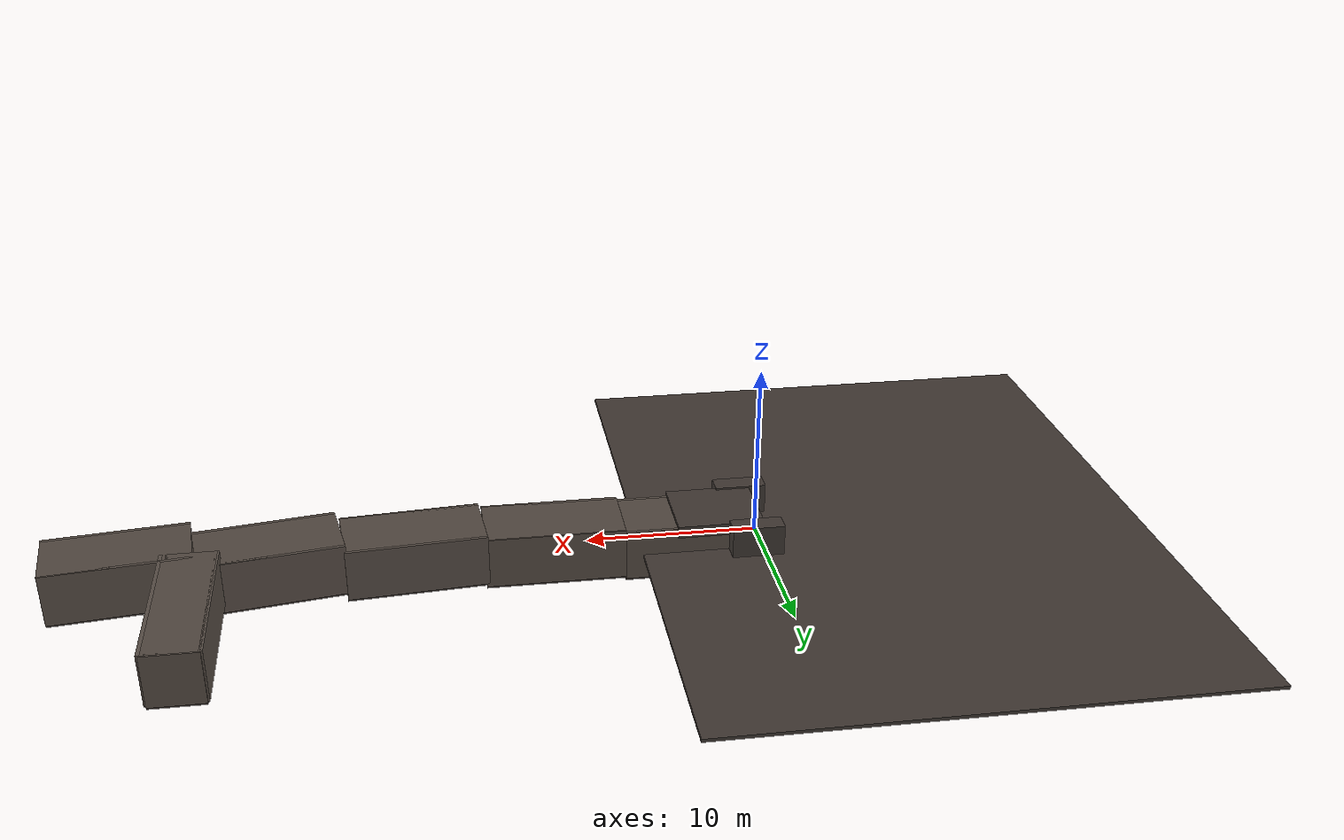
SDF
<sdf version="1.8">
 <world name="lava_tube">
  <model name="lunar_surface">
   <static>true</static>
   <pose>-8 0 -0.1 0 0 0</pose>
   <link name="link">
    <collision name="surface_col"><geometry><box><size>30 40 0.2</size></box></geometry></collision>
    <visual name="surface_vis">
     <geometry><box><size>30 40 0.2</size></box></geometry>
     <material>
      <ambient>0.20 0.18 0.16 1</ambient>
      <diffuse>0.25 0.22 0.20 1</diffuse>
      <specular>0.05 0.05 0.05 1</specular>
     </material>
    </visual>
   </link>
  </model>
  <model name="entrance_ramp">
   <static>true</static>
   <pose>-3.5 0 -0.75 0 -0.21109333322274654 0</pose>
   <link name="link">
    <collision name="ramp_col">
     <pose>0 0 -0.075 0 0 0</pose>
     <geometry><box><size>7.0 4.0 0.15</size></box></geometry>
    </collision>
    <visual name="ramp_vis">
     <pose>0 0 -0.075 0 0 0</pose>
     <geometry><box><size>7.0 4.0 0.15</size></box></geometry>
     <material>
      <ambient>0.18 0.16 0.14 1</ambient>
      <diffuse>0.22 0.19 0.17 1</diffuse>
      <specular>0.05 0.05 0.05 1</specular>
     </material>
    </visual>
   </link>
  </model>
  <model name="berm_l">
   <static>true</static>
   <pose>0.5 2.6 0.9 0 0 0</pose>
   <link name="link">
    <collision name="b_col"><geometry><box><size>3.0 1.2 1.8</size></box></geometry></collision>
    <visual name="b_vis">
     <geometry><box><size>3.0 1.2 1.8</size></box></geometry>
     <material>
      <ambient>0.20 0.18 0.16 1</ambient>
      <diffuse>0.25 0.22 0.20 1</diffuse>
      <specular>0.05 0.05 0.05 1</specular>
     </material>
    </visual>
   </link>
  </model>
  <model name="berm_r">
   <static>true</static>
   <pose>0.5 -2.6 0.9 0 0 0</pose>
   <link name="link">
    <collision name="b_col"><geometry><box><size>3.0 1.2 1.8</size></box></geometry></collision>
    <visual name="b_vis">
     <geometry><box><size>3.0 1.2 1.8</size></box></geometry>
     <material>
      <ambient>0.20 0.18 0.16 1</ambient>
      <diffuse>0.25 0.22 0.20 1</diffuse>
      <specular>0.05 0.05 0.05 1</specular>
     </material>
    </visual>
   </link>
  </model>
  <model name="berm_top">
   <static>true</static>
   <pose>2.5 0.0 1.35 0 0 0</pose>
   <link name="link">
    <collision name="b_col"><geometry><box><size>5.0 4.5 0.7</size></box></geometry></collision>
    <visual name="b_vis">
     <geometry><box><size>5.0 4.5 0.7</size></box></geometry>
     <material>
      <ambient>0.20 0.18 0.16 1</ambient>
      <diffuse>0.25 0.22 0.20 1</diffuse>
      <specular>0.05 0.05 0.05 1</specular>
     </material>
    </visual>
   </link>
  </model>
  <model name="tube_seg_00">
   <static>true</static>
   <pose>4.0 0.0 -1.5 0 0 0.0</pose>
   <link name="link">
    <collision name="floor_col">
     <pose>0 0 -0.075 0 0 0</pose>
     <geometry><box><size>8.0 4.0 0.15</size></box></geometry>
    </collision>
    <visual name="floor_vis">
     <pose>0 0 -0.075 0 0 0</pose>
     <geometry><box><size>8.0 4.0 0.15</size></box></geometry>
     <material>
      <ambient>0.18 0.16 0.14 1</ambient>
      <diffuse>0.22 0.19 0.17 1</diffuse>
      <specular>0.05 0.05 0.05 1</specular>
     </material>
    </visual>
    <collision name="ceiling_col">
     <pose>0 0 2.925 0 0 0</pose>
     <geometry><box><size>8.0 4.0 0.15</size></box></geometry>
    </collision>
    <visual name="ceiling_vis">
     <pose>0 0 2.925 0 0 0</pose>
     <geometry><box><size>8.0 4.0 0.15</size></box></geometry>
     <material>
      <ambient>0.28 0.25 0.22 1</ambient>
      <diffuse>0.32 0.28 0.25 1</diffuse>
      <specular>0.05 0.05 0.05 1</specular>
     </material>
    </visual>
    <collision name="wall_l_col">
     <pose>0 2.0 1.5 0 0 0</pose>
     <geometry><box><size>8.0 0.2 3.0</size></box></geometry>
    </collision>
    <visual name="wall_l_vis">
     <pose>0 2.0 1.5 0 0 0</pose>
     <geometry><box><size>8.0 0.2 3.0</size></box></geometry>
     <material>
      <ambient>0.30 0.27 0.24 1</ambient>
      <diffuse>0.34 0.30 0.27 1</diffuse>
      <specular>0.05 0.05 0.05 1</specular>
     </material>
    </visual>
    <collision name="wall_r_col">
     <pose>0 -2.0 1.5 0 0 0</pose>
     <geometry><box><size>8.0 0.2 3.0</size></box></geometry>
    </collision>
    <visual name="wall_r_vis">
     <pose>0 -2.0 1.5 0 0 0</pose>
     <geometry><box><size>8.0 0.2 3.0</size></box></geometry>
     <material>
      <ambient>0.30 0.27 0.24 1</ambient>
      <diffuse>0.34 0.30 0.27 1</diffuse>
      <specular>0.05 0.05 0.05 1</specular>
     </material>
    </visual>
   </link>
  </model>
  <model name="tube_seg_01">
   <static>true</static>
   <pose>12.0 0.0 -1.35 0 0 0.0</pose>
   <link name="link">
    <collision name="floor_col">
     <pose>0 0 -0.075 0 0 0</pose>
     <geometry><box><size>8.0 4.0 0.15</size></box></geometry>
    </collision>
    <visual name="floor_vis">
     <pose>0 0 -0.075 0 0 0</pose>
     <geometry><box><size>8.0 4.0 0.15</size></box></geometry>
     <material>
      <ambient>0.18 0.16 0.14 1</ambient>
      <diffuse>0.22 0.19 0.17 1</diffuse>
      <specular>0.05 0.05 0.05 1</specular>
     </material>
    </visual>
    <collision name="ceiling_col">
     <pose>0 0 2.925 0 0 0</pose>
     <geometry><box><size>8.0 4.0 0.15</size></box></geometry>
    </collision>
    <visual name="ceiling_vis">
     <pose>0 0 2.925 0 0 0</pose>
     <geometry><box><size>8.0 4.0 0.15</size></box></geometry>
     <material>
      <ambient>0.28 0.25 0.22 1</ambient>
      <diffuse>0.32 0.28 0.25 1</diffuse>
      <specular>0.05 0.05 0.05 1</specular>
     </material>
    </visual>
    <collision name="wall_l_col">
     <pose>0 2.0 1.5 0 0 0</pose>
     <geometry><box><size>8.0 0.2 3.0</size></box></geometry>
    </collision>
    <visual name="wall_l_vis">
     <pose>0 2.0 1.5 0 0 0</pose>
     <geometry><box><size>8.0 0.2 3.0</size></box></geometry>
     <material>
      <ambient>0.30 0.27 0.24 1</ambient>
      <diffuse>0.34 0.30 0.27 1</diffuse>
      <specular>0.05 0.05 0.05 1</specular>
     </material>
    </visual>
    <collision name="wall_r_col">
     <pose>0 -2.0 1.5 0 0 0</pose>
     <geometry><box><size>8.0 0.2 3.0</size></box></geometry>
    </collision>
    <visual name="wall_r_vis">
     <pose>0 -2.0 1.5 0 0 0</pose>
     <geometry><box><size>8.0 0.2 3.0</size></box></geometry>
     <material>
      <ambient>0.30 0.27 0.24 1</ambient>
      <diffuse>0.34 0.30 0.27 1</diffuse>
      <specular>0.05 0.05 0.05 1</specular>
     </material>
    </visual>
   </link>
  </model>
  <model name="tube_seg_02">
   <static>true</static>
   <pose>20.0 0.4 -1.1 0 0 0.08</pose>
   <link name="link">
    <collision name="floor_col">
     <pose>0 0 -0.075 0 0 0</pose>
     <geometry><box><size>8.0 4.0 0.15</size></box></geometry>
    </collision>
    <visual name="floor_vis">
     <pose>0 0 -0.075 0 0 0</pose>
     <geometry><box><size>8.0 4.0 0.15</size></box></geometry>
     <material>
      <ambient>0.18 0.16 0.14 1</ambient>
      <diffuse>0.22 0.19 0.17 1</diffuse>
      <specular>0.05 0.05 0.05 1</specular>
     </material>
    </visual>
    <collision name="ceiling_col">
     <pose>0 0 2.925 0 0 0</pose>
     <geometry><box><size>8.0 4.0 0.15</size></box></geometry>
    </collision>
    <visual name="ceiling_vis">
     <pose>0 0 2.925 0 0 0</pose>
     <geometry><box><size>8.0 4.0 0.15</size></box></geometry>
     <material>
      <ambient>0.28 0.25 0.22 1</ambient>
      <diffuse>0.32 0.28 0.25 1</diffuse>
      <specular>0.05 0.05 0.05 1</specular>
     </material>
    </visual>
    <collision name="wall_l_col">
     <pose>0 2.0 1.5 0 0 0</pose>
     <geometry><box><size>8.0 0.2 3.0</size></box></geometry>
    </collision>
    <visual name="wall_l_vis">
     <pose>0 2.0 1.5 0 0 0</pose>
     <geometry><box><size>8.0 0.2 3.0</size></box></geometry>
     <material>
      <ambient>0.30 0.27 0.24 1</ambient>
      <diffuse>0.34 0.30 0.27 1</diffuse>
      <specular>0.05 0.05 0.05 1</specular>
     </material>
    </visual>
    <collision name="wall_r_col">
     <pose>0 -2.0 1.5 0 0 0</pose>
     <geometry><box><size>8.0 0.2 3.0</size></box></geometry>
    </collision>
    <visual name="wall_r_vis">
     <pose>0 -2.0 1.5 0 0 0</pose>
     <geometry><box><size>8.0 0.2 3.0</size></box></geometry>
     <material>
      <ambient>0.30 0.27 0.24 1</ambient>
      <diffuse>0.34 0.30 0.27 1</diffuse>
      <specular>0.05 0.05 0.05 1</specular>
     </material>
    </visual>
   </link>
  </model>
  <model name="tube_seg_03">
   <static>true</static>
   <pose>28.0 1.2 -0.75 0 0 0.16</pose>
   <link name="link">
    <collision name="floor_col">
     <pose>0 0 -0.075 0 0 0</pose>
     <geometry><box><size>8.0 4.0 0.15</size></box></geometry>
    </collision>
    <visual name="floor_vis">
     <pose>0 0 -0.075 0 0 0</pose>
     <geometry><box><size>8.0 4.0 0.15</size></box></geometry>
     <material>
      <ambient>0.18 0.16 0.14 1</ambient>
      <diffuse>0.22 0.19 0.17 1</diffuse>
      <specular>0.05 0.05 0.05 1</specular>
     </material>
    </visual>
    <collision name="ceiling_col">
     <pose>0 0 2.925 0 0 0</pose>
     <geometry><box><size>8.0 4.0 0.15</size></box></geometry>
    </collision>
    <visual name="ceiling_vis">
     <pose>0 0 2.925 0 0 0</pose>
     <geometry><box><size>8.0 4.0 0.15</size></box></geometry>
     <material>
      <ambient>0.28 0.25 0.22 1</ambient>
      <diffuse>0.32 0.28 0.25 1</diffuse>
      <specular>0.05 0.05 0.05 1</specular>
     </material>
    </visual>
    <collision name="wall_l_col">
     <pose>0 2.0 1.5 0 0 0</pose>
     <geometry><box><size>8.0 0.2 3.0</size></box></geometry>
    </collision>
    <visual name="wall_l_vis">
     <pose>0 2.0 1.5 0 0 0</pose>
     <geometry><box><size>8.0 0.2 3.0</size></box></geometry>
     <material>
      <ambient>0.30 0.27 0.24 1</ambient>
      <diffuse>0.34 0.30 0.27 1</diffuse>
      <specular>0.05 0.05 0.05 1</specular>
     </material>
    </visual>
    <collision name="wall_r_col">
     <pose>0 -2.0 1.5 0 0 0</pose>
     <geometry><box><size>8.0 0.2 3.0</size></box></geometry>
    </collision>
    <visual name="wall_r_vis">
     <pose>0 -2.0 1.5 0 0 0</pose>
     <geometry><box><size>8.0 0.2 3.0</size></box></geometry>
     <material>
      <ambient>0.30 0.27 0.24 1</ambient>
      <diffuse>0.34 0.30 0.27 1</diffuse>
      <specular>0.05 0.05 0.05 1</specular>
     </material>
    </visual>
   </link>
  </model>
  <model name="tube_seg_04">
   <static>true</static>
   <pose>36.0 2.0 -0.25 0 0 0.12</pose>
   <link name="link">
    <collision name="floor_col">
     <pose>0 0 -0.075 0 0 0</pose>
     <geometry><box><size>8.0 4.0 0.15</size></box></geometry>
    </collision>
    <visual name="floor_vis">
     <pose>0 0 -0.075 0 0 0</pose>
     <geometry><box><size>8.0 4.0 0.15</size></box></geometry>
     <material>
      <ambient>0.18 0.16 0.14 1</ambient>
      <diffuse>0.22 0.19 0.17 1</diffuse>
      <specular>0.05 0.05 0.05 1</specular>
     </material>
    </visual>
    <collision name="ceiling_col">
     <pose>0 0 2.925 0 0 0</pose>
     <geometry><box><size>8.0 4.0 0.15</size></box></geometry>
    </collision>
    <visual name="ceiling_vis">
     <pose>0 0 2.925 0 0 0</pose>
     <geometry><box><size>8.0 4.0 0.15</size></box></geometry>
     <material>
      <ambient>0.28 0.25 0.22 1</ambient>
      <diffuse>0.32 0.28 0.25 1</diffuse>
      <specular>0.05 0.05 0.05 1</specular>
     </material>
    </visual>
    <collision name="wall_l_col">
     <pose>0 2.0 1.5 0 0 0</pose>
     <geometry><box><size>8.0 0.2 3.0</size></box></geometry>
    </collision>
    <visual name="wall_l_vis">
     <pose>0 2.0 1.5 0 0 0</pose>
     <geometry><box><size>8.0 0.2 3.0</size></box></geometry>
     <material>
      <ambient>0.30 0.27 0.24 1</ambient>
      <diffuse>0.34 0.30 0.27 1</diffuse>
      <specular>0.05 0.05 0.05 1</specular>
     </material>
    </visual>
    <collision name="wall_r_col">
     <pose>0 -2.0 1.5 0 0 0</pose>
     <geometry><box><size>8.0 0.2 3.0</size></box></geometry>
    </collision>
    <visual name="wall_r_vis">
     <pose>0 -2.0 1.5 0 0 0</pose>
     <geometry><box><size>8.0 0.2 3.0</size></box></geometry>
     <material>
      <ambient>0.30 0.27 0.24 1</ambient>
      <diffuse>0.34 0.30 0.27 1</diffuse>
      <specular>0.05 0.05 0.05 1</specular>
     </material>
    </visual>
   </link>
  </model>
  <model name="wheel_barrier">
   <static>true</static>
   <pose>27.0 1.0 -0.5 0 0 0.16</pose>
   <link name="link">
    <collision name="lip_col"><geometry><box><size>0.35 3.6 0.5</size></box></geometry></collision>
    <visual name="lip_vis">
     <geometry><box><size>0.35 3.6 0.5</size></box></geometry>
     <material>
      <ambient>0.32 0.28 0.24 1</ambient>
      <diffuse>0.36 0.32 0.28 1</diffuse>
      <specular>0.05 0.05 0.05 1</specular>
     </material>
    </visual>
   </link>
  </model>
  <model name="alcove">
   <static>true</static>
   <pose>32 8 -0.25 0 0 1.5708</pose>
   <link name="link">
    <collision name="floor_col">
     <pose>0 0 -0.075 0 0 0</pose>
     <geometry><box><size>10.0 3.0 0.15</size></box></geometry>
    </collision>
    <visual name="floor_vis">
     <pose>0 0 -0.075 0 0 0</pose>
     <geometry><box><size>10.0 3.0 0.15</size></box></geometry>
     <material>
      <ambient>0.18 0.16 0.14 1</ambient>
      <diffuse>0.22 0.19 0.17 1</diffuse>
      <specular>0.05 0.05 0.05 1</specular>
     </material>
    </visual>
    <collision name="ceiling_col">
     <pose>0 0 2.925 0 0 0</pose>
     <geometry><box><size>10.0 3.0 0.15</size></box></geometry>
    </collision>
    <visual name="ceiling_vis">
     <pose>0 0 2.925 0 0 0</pose>
     <geometry><box><size>10.0 3.0 0.15</size></box></geometry>
     <material>
      <ambient>0.28 0.25 0.22 1</ambient>
      <diffuse>0.32 0.28 0.25 1</diffuse>
      <specular>0.05 0.05 0.05 1</specular>
     </material>
    </visual>
    <collision name="wall_l_col">
     <pose>0 1.5 1.5 0 0 0</pose>
     <geometry><box><size>10.0 0.2 3.0</size></box></geometry>
    </collision>
    <visual name="wall_l_vis">
     <pose>0 1.5 1.5 0 0 0</pose>
     <geometry><box><size>10.0 0.2 3.0</size></box></geometry>
     <material>
      <ambient>0.30 0.27 0.24 1</ambient>
      <diffuse>0.34 0.30 0.27 1</diffuse>
      <specular>0.05 0.05 0.05 1</specular>
     </material>
    </visual>
    <collision name="wall_r_col">
     <pose>0 -1.5 1.5 0 0 0</pose>
     <geometry><box><size>10.0 0.2 3.0</size></box></geometry>
    </collision>
    <visual name="wall_r_vis">
     <pose>0 -1.5 1.5 0 0 0</pose>
     <geometry><box><size>10.0 0.2 3.0</size></box></geometry>
     <material>
      <ambient>0.30 0.27 0.24 1</ambient>
      <diffuse>0.34 0.30 0.27 1</diffuse>
      <specular>0.05 0.05 0.05 1</specular>
     </material>
    </visual>
    <collision name="aend_col">
     <pose>5.0 0 1.5 0 0 0</pose>
     <geometry><box><size>0.2 3.0 3.0</size></box></geometry>
    </collision>
    <visual name="aend_vis">
     <pose>5.0 0 1.5 0 0 0</pose>
     <geometry><box><size>0.2 3.0 3.0</size></box></geometry>
     <material>
      <ambient>0.30 0.27 0.24 1</ambient>
      <diffuse>0.34 0.30 0.27 1</diffuse>
      <specular>0.05 0.05 0.05 1</specular>
     </material>
    </visual>
   </link>
  </model>
 </world>
</sdf>
